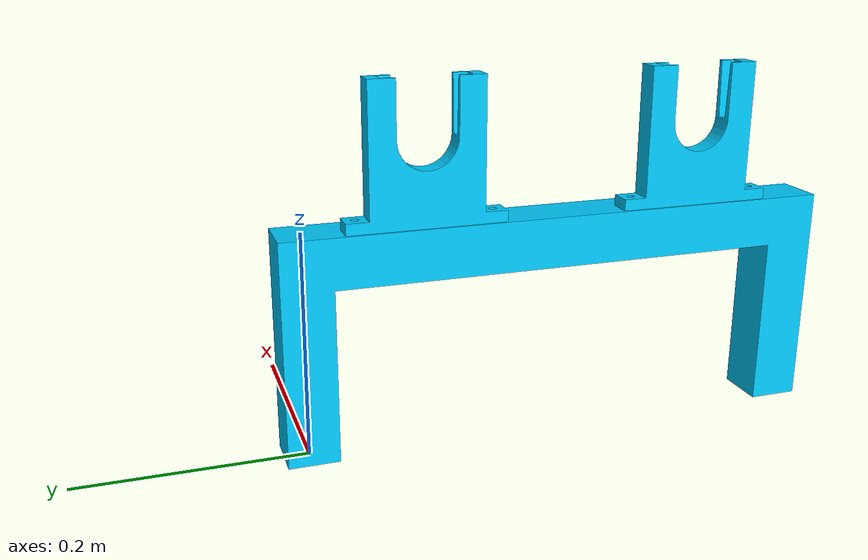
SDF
<?xml version="1.0" ?>
<sdf version="1.6">
  <model name="tool_rack">
    <link name="rack">
      <inertial>
        <mass> 1 </mass>
      </inertial>
      <collision name="collision">
        <geometry>
          <mesh>
            <uri>model://tool_rack/meshes/collision.stl</uri>
          </mesh>
        </geometry>
      </collision>
      <visual name="visual">
	    <geometry>
          <mesh>
            <uri>model://tool_rack/meshes/visual.dae</uri>
          </mesh>
        </geometry>
        <material>
            <ambient>0.0 0.8 1 1</ambient>
            <diffuse>0.0 0.8 1 1</diffuse>
        </material>
      </visual>
      <pose>0.0 0.0 0.0 0 0 0</pose>
    </link>

    <joint name="rack_to_world" type="fixed">
      <parent>world</parent>
      <child>rack</child>
      <pose>0.0 0.0 0.0 0 0 0</pose>
    </joint>
  </model>
</sdf>
